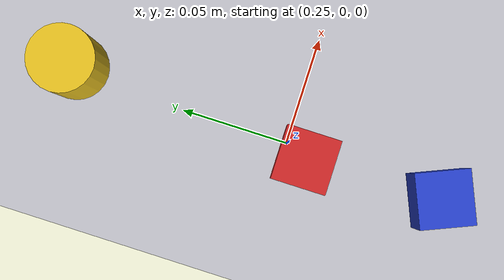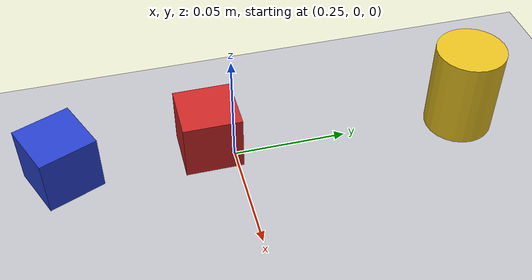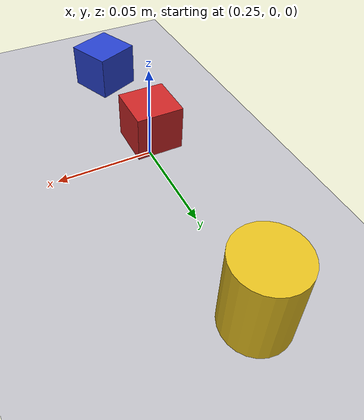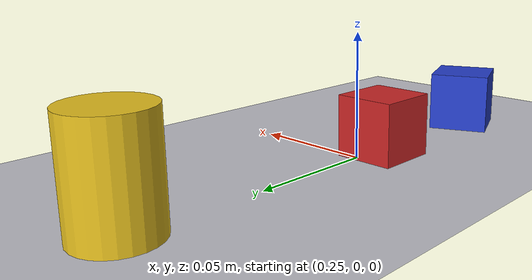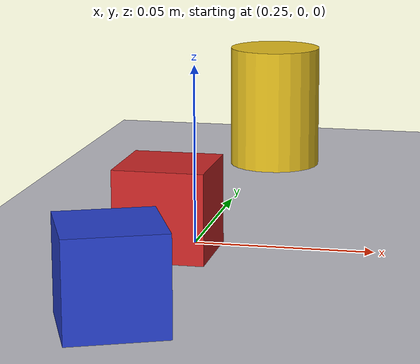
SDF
<?xml version="1.0"?>
<!-- Minimal bench for the SO-101 wrist camera: a work surface and three
     graspable objects placed inside the camera cone so the feed shows
     something recognisable immediately. -->
<sdf version="1.10">
  <world name="pick_bench">

    <physics name="1ms" type="ignored">
      <max_step_size>0.001</max_step_size>
      <real_time_factor>1.0</real_time_factor>
    </physics>

    <plugin filename="gz-sim-physics-system"
            name="gz::sim::systems::Physics"/>
    <plugin filename="gz-sim-user-commands-system"
            name="gz::sim::systems::UserCommands"/>
    <plugin filename="gz-sim-scene-broadcaster-system"
            name="gz::sim::systems::SceneBroadcaster"/>
    <!-- Without this the camera sensor produces no images. -->
    <plugin filename="gz-sim-sensors-system"
            name="gz::sim::systems::Sensors">
      <render_engine>ogre2</render_engine>
    </plugin>

    <light type="directional" name="sun">
      <cast_shadows>true</cast_shadows>
      <pose>0 0 10 0 0 0</pose>
      <diffuse>0.9 0.9 0.9 1</diffuse>
      <specular>0.25 0.25 0.25 1</specular>
      <direction>-0.5 0.2 -0.9</direction>
    </light>

    <model name="ground_plane">
      <static>true</static>
      <link name="link">
        <collision name="collision">
          <geometry><plane><normal>0 0 1</normal><size>10 10</size></plane></geometry>
        </collision>
        <visual name="visual">
          <geometry><plane><normal>0 0 1</normal><size>10 10</size></plane></geometry>
          <material>
            <ambient>0.75 0.75 0.78 1</ambient>
            <diffuse>0.75 0.75 0.78 1</diffuse>
          </material>
        </visual>
      </link>
    </model>

    <model name="cube_red">
      <pose>0.245 -0.010 0.0125 0 0 0</pose>
      <link name="link">
        <inertial>
          <mass>0.05</mass>
          <inertia><ixx>5.2e-6</ixx><iyy>5.2e-6</iyy><izz>5.2e-6</izz>
                   <ixy>0</ixy><ixz>0</ixz><iyz>0</iyz></inertia>
        </inertial>
        <collision name="collision">
          <geometry><box><size>0.025 0.025 0.025</size></box></geometry>
        </collision>
        <visual name="visual">
          <geometry><box><size>0.025 0.025 0.025</size></box></geometry>
          <material>
            <ambient>0.7 0.12 0.12 1</ambient>
            <diffuse>0.8 0.15 0.15 1</diffuse>
          </material>
        </visual>
      </link>
    </model>

    <model name="cube_blue">
      <pose>0.247 -0.073 0.0125 0 0 0.4</pose>
      <link name="link">
        <inertial>
          <mass>0.05</mass>
          <inertia><ixx>5.2e-6</ixx><iyy>5.2e-6</iyy><izz>5.2e-6</izz>
                   <ixy>0</ixy><ixz>0</ixz><iyz>0</iyz></inertia>
        </inertial>
        <collision name="collision">
          <geometry><box><size>0.025 0.025 0.025</size></box></geometry>
        </collision>
        <visual name="visual">
          <geometry><box><size>0.025 0.025 0.025</size></box></geometry>
          <material>
            <ambient>0.12 0.2 0.65 1</ambient>
            <diffuse>0.15 0.25 0.8 1</diffuse>
          </material>
        </visual>
      </link>
    </model>

    <model name="cylinder_yellow">
      <pose>0.254 0.103 0.02 0 0 0</pose>
      <link name="link">
        <inertial>
          <mass>0.04</mass>
          <inertia><ixx>8.0e-6</ixx><iyy>8.0e-6</iyy><izz>4.5e-6</izz>
                   <ixy>0</ixy><ixz>0</ixz><iyz>0</iyz></inertia>
        </inertial>
        <collision name="collision">
          <geometry><cylinder><radius>0.015</radius><length>0.04</length></cylinder></geometry>
        </collision>
        <visual name="visual">
          <geometry><cylinder><radius>0.015</radius><length>0.04</length></cylinder></geometry>
          <material>
            <ambient>0.75 0.62 0.1 1</ambient>
            <diffuse>0.9 0.75 0.12 1</diffuse>
          </material>
        </visual>
      </link>
    </model>

  </world>
</sdf>
